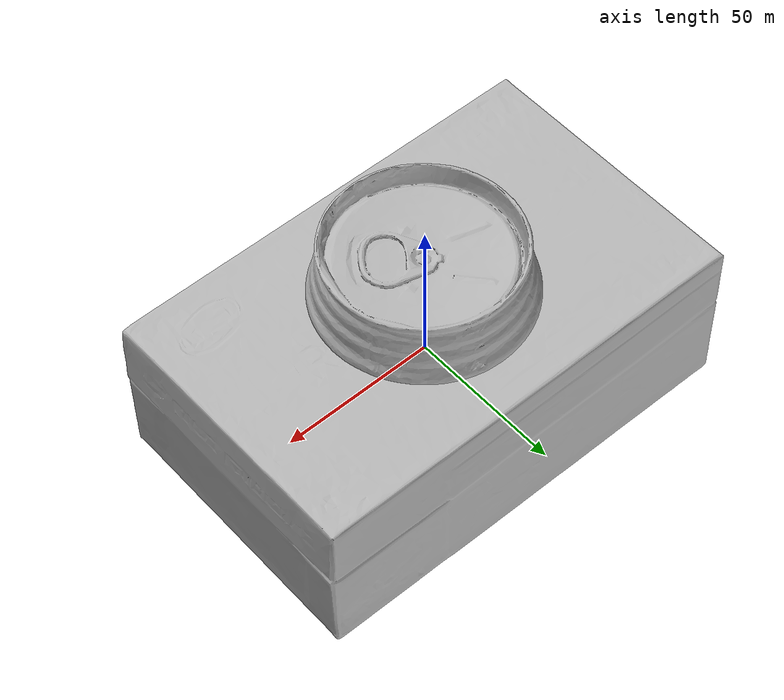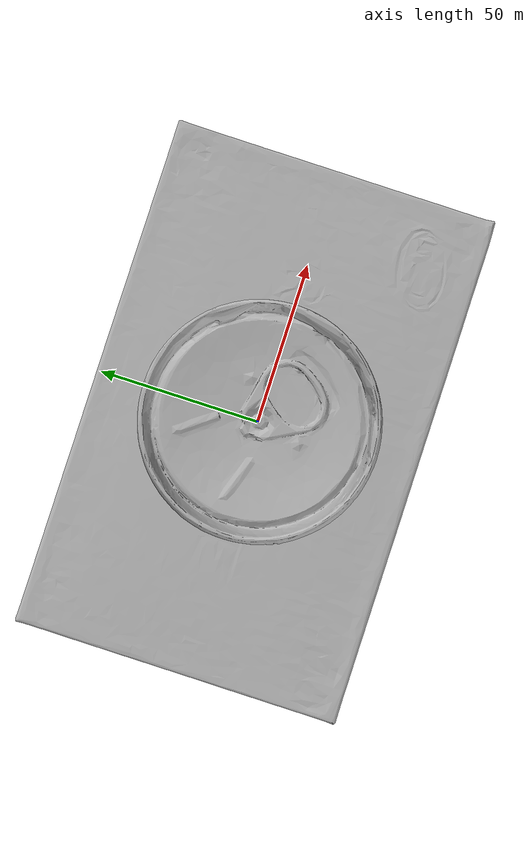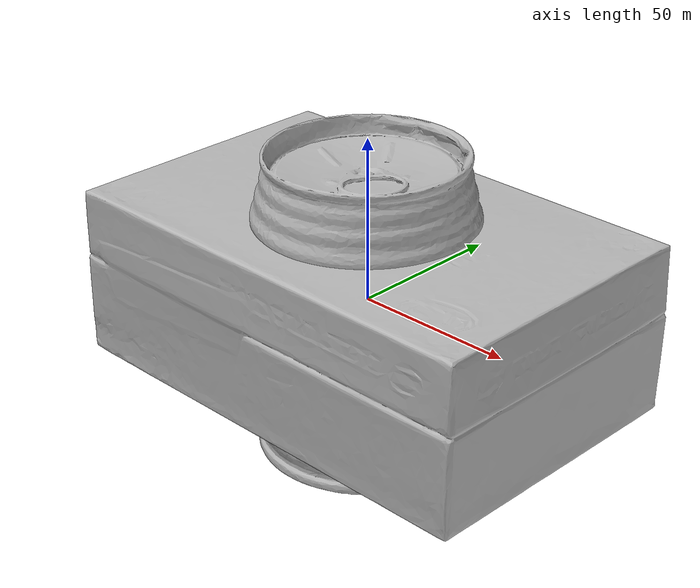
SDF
<?xml version="1.0" ?>
<sdf version="1.4">
  <world name="default">
    <light name="light1" type="point">
      <pose>0 0 1 0 0 0</pose>
      <diffuse>3 3 3 1</diffuse>
      <specular>3 3 3 1</specular>
    </light>
    <light name="light2" type="point">
      <pose>0 0.5 2 0 0 0</pose>
      <diffuse>1 1 1 1</diffuse>
      <specular>1 1 1 1</specular>
    </light>
    <light name="light3" type="point">
      <pose>0 0.5 2 0 0 0</pose>
      <diffuse>3 3 3 1</diffuse>
      <specular>3 3 3 1</specular>
    </light>
    <scene>
      <ambient>0.7 0.7 0.7</ambient>
    </scene>
    <model name="box1">
      <link name="link_box1">
        <collision name="default">
          <geometry>
            <mesh>
              <uri>model://realsense_box/collision_meshes/collision.obj</uri>
              <scale>1.0 1.0 1.0</scale>
            </mesh>
          </geometry>
          <surface>
            <friction>
              <ode>
                <mu>0.5</mu>
                <mu2>0.5</mu2>
              </ode>
            </friction>
            <contact>
              <ode>
                <max_vel>0</max_vel>
                <min_depth>0.0001</min_depth>
                <kp>1e8</kp>
              </ode>
            </contact>
          </surface>
        </collision>
        <visual name="default">
          <geometry>
            <mesh>
              <uri>model://realsense_box/visual_meshes/visual.dae</uri>
              <scale>1.0 1.0 1.0</scale>
            </mesh>
          </geometry>
        </visual>
        <inertial>
          <mass>0.5864310264587402</mass>
          <pose>4.0744838770478964e-05 8.587492629885674e-05 -2.4153792764991522e-05 -0.00012602841398420584 -0.00635893997803049 0.005012323893530406</pose>
          <inertia>
            <ixx>0.00055784633</ixx>
            <iyy>0.0011643406</iyy>
            <izz>0.0014403972</izz>
            <ixy>0</ixy>
            <ixz>0</ixz>
            <iyz>0</iyz>
          </inertia>
        </inertial>
      </link>
      <pose>-0.026903634890913963 0.3518194258213043 0.027316007763147354 -5.17068554512915e-08 2.708812727313799e-08 3.126637404306193</pose>
    </model>
    <model name="box2">
      <link name="link_box2">
        <collision name="default">
          <geometry>
            <mesh>
              <uri>model://wooden_puzzle1/collision_meshes/collision.obj</uri>
              <scale>1.0 1.0 1.0</scale>
            </mesh>
          </geometry>
          <surface>
            <friction>
              <ode>
                <mu>0.5</mu>
                <mu2>0.5</mu2>
              </ode>
            </friction>
            <contact>
              <ode>
                <max_vel>0</max_vel>
                <min_depth>0.0001</min_depth>
                <kp>1e8</kp>
              </ode>
            </contact>
          </surface>
        </collision>
        <visual name="default">
          <geometry>
            <mesh>
              <uri>model://wooden_puzzle1/visual_meshes/visual.dae</uri>
              <scale>1.0 1.0 1.0</scale>
            </mesh>
          </geometry>
        </visual>
        <inertial>
          <mass>0.029293930158019066</mass>
          <pose>-0.00017350679263472557 7.972260209498927e-05 -9.191554272547364e-05 -0.07784356807478612 -0.26361316070226715 -0.552870069934309</pose>
          <inertia>
            <ixx>5.5269634e-06</ixx>
            <iyy>5.4205675e-06</iyy>
            <izz>5.4852344e-06</izz>
            <ixy>0</ixy>
            <ixz>0</ixz>
            <iyz>0</iyz>
          </inertia>
        </inertial>
      </link>
      <pose>0.007755110040307045 -0.034986309707164764 0.016802024096250534 0.010511507435230976 -0.009454011106689834 0.8880201681505095</pose>
    </model>
    <model name="box3">
      <link name="link_box3">
        <collision name="default">
          <geometry>
            <mesh>
              <uri>model://wooden_puzzle2/collision_meshes/collision.obj</uri>
              <scale>1.0 1.0 1.0</scale>
            </mesh>
          </geometry>
          <surface>
            <friction>
              <ode>
                <mu>0.5</mu>
                <mu2>0.5</mu2>
              </ode>
            </friction>
            <contact>
              <ode>
                <max_vel>0</max_vel>
                <min_depth>0.0001</min_depth>
                <kp>1e8</kp>
              </ode>
            </contact>
          </surface>
        </collision>
        <visual name="default">
          <geometry>
            <mesh>
              <uri>model://wooden_puzzle2/visual_meshes/visual.dae</uri>
              <scale>1.0 1.0 1.0</scale>
            </mesh>
          </geometry>
        </visual>
        <inertial>
          <mass>0.046210821717977524</mass>
          <pose>2.7402538762544282e-05 4.9976635636994615e-05 6.587122334167361e-05 -0.19202726218652877 0.6112834530151037 -0.6338736448019666</pose>
          <inertia>
            <ixx>8.590097e-06</ixx>
            <iyy>8.826809e-06</iyy>
            <izz>8.7012395e-06</izz>
            <ixy>0</ixy>
            <ixz>0</ixz>
            <iyz>0</iyz>
          </inertia>
        </inertial>
      </link>
      <pose>-0.010009250603616238 0.04131479933857918 0.016917740926146507 0.020847387581770422 0.0007222850003031028 0.2246658539038679</pose>
    </model>
    <model name="can1">
      <link name="link_can1">
        <collision name="default">
          <geometry>
            <mesh>
              <uri>model://pepsi/collision_meshes/collision.obj</uri>
              <scale>1.0 1.0 1.0</scale>
            </mesh>
          </geometry>
          <surface>
            <friction>
              <ode>
                <mu>0.5</mu>
                <mu2>0.5</mu2>
              </ode>
            </friction>
            <contact>
              <ode>
                <max_vel>0</max_vel>
                <min_depth>0.0001</min_depth>
                <kp>1e8</kp>
              </ode>
            </contact>
          </surface>
        </collision>
        <visual name="default">
          <geometry>
            <mesh>
              <uri>model://pepsi/visual_meshes/visual.dae</uri>
              <scale>1.0 1.0 1.0</scale>
            </mesh>
          </geometry>
        </visual>
        <inertial>
          <mass>0.38708412647247314</mass>
          <pose>-7.5590331107378e-05 2.9931279641459696e-05 -0.0003384356386959553 -0.0010677624110939459 -0.0021735778616849013 0.5673701652335379</pose>
          <inertia>
            <ixx>0.00077114574</ixx>
            <iyy>0.0007705839</iyy>
            <izz>0.00016412749</izz>
            <ixy>0</ixy>
            <ixz>0</ixz>
            <iyz>0</iyz>
          </inertia>
        </inertial>
      </link>
      <pose>0.2568463683128357 0.05772741511464119 0.07449629157781601 -1.864119956769454e-05 2.18319694606818e-06 -2.684034810745387</pose>
    </model>
    <model name="can2">
      <link name="link_can2">
        <collision name="default">
          <geometry>
            <mesh>
              <uri>model://redbull/collision_meshes/collision.obj</uri>
              <scale>1.0 1.0 1.0</scale>
            </mesh>
          </geometry>
          <surface>
            <friction>
              <ode>
                <mu>0.5</mu>
                <mu2>0.5</mu2>
              </ode>
            </friction>
            <contact>
              <ode>
                <max_vel>0</max_vel>
                <min_depth>0.0001</min_depth>
                <kp>1e8</kp>
              </ode>
            </contact>
          </surface>
        </collision>
        <visual name="default">
          <geometry>
            <mesh>
              <uri>model://redbull/visual_meshes/visual.dae</uri>
              <scale>1.0 1.0 1.0</scale>
            </mesh>
          </geometry>
        </visual>
        <inertial>
          <mass>0.22841571271419525</mass>
          <pose>-2.2126563635538332e-05 -0.00012659550702665 -0.0006860988214612007 0.001137008533125708 -0.010800935482360328 0.5858832407094048</pose>
          <inertia>
            <ixx>0.00021475992</ixx>
            <iyy>0.00021494119</iyy>
            <izz>0.00012744407</izz>
            <ixy>0</ixy>
            <ixz>0</ixz>
            <iyz>0</iyz>
          </inertia>
        </inertial>
      </link>
      <pose>0.021882958710193634 -0.27331623435020447 0.046385638415813446 -0.010489830961333874 0.007260165944441952 1.3402278914137902</pose>
    </model>
    <physics type="ode">
      <max_contacts>50</max_contacts>
      <ode>
        <solver>
          <type>quick</type>
          <iters>75</iters>
        </solver>
        <constraints>
          <contact_max_correcting_vel>0</contact_max_correcting_vel>
          <contact_surface_layer>0</contact_surface_layer>
        </constraints>
      </ode>
    </physics>
  </world>
</sdf>
